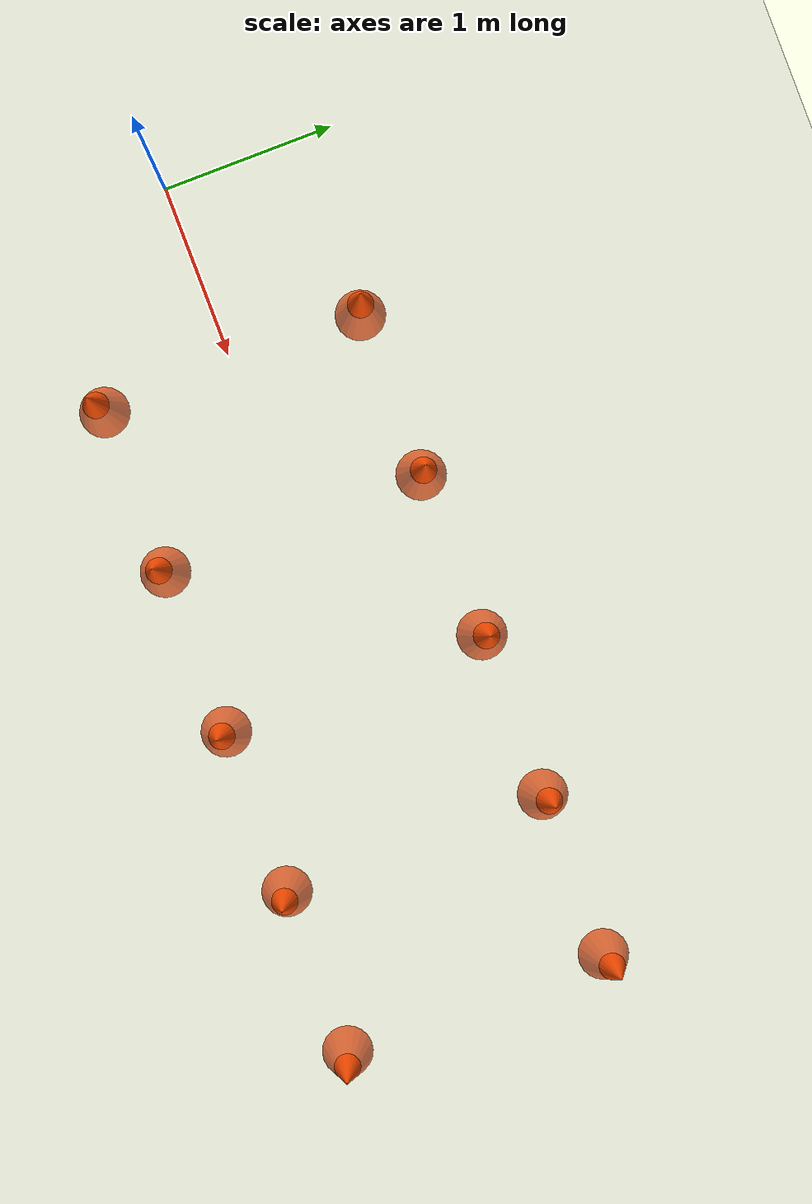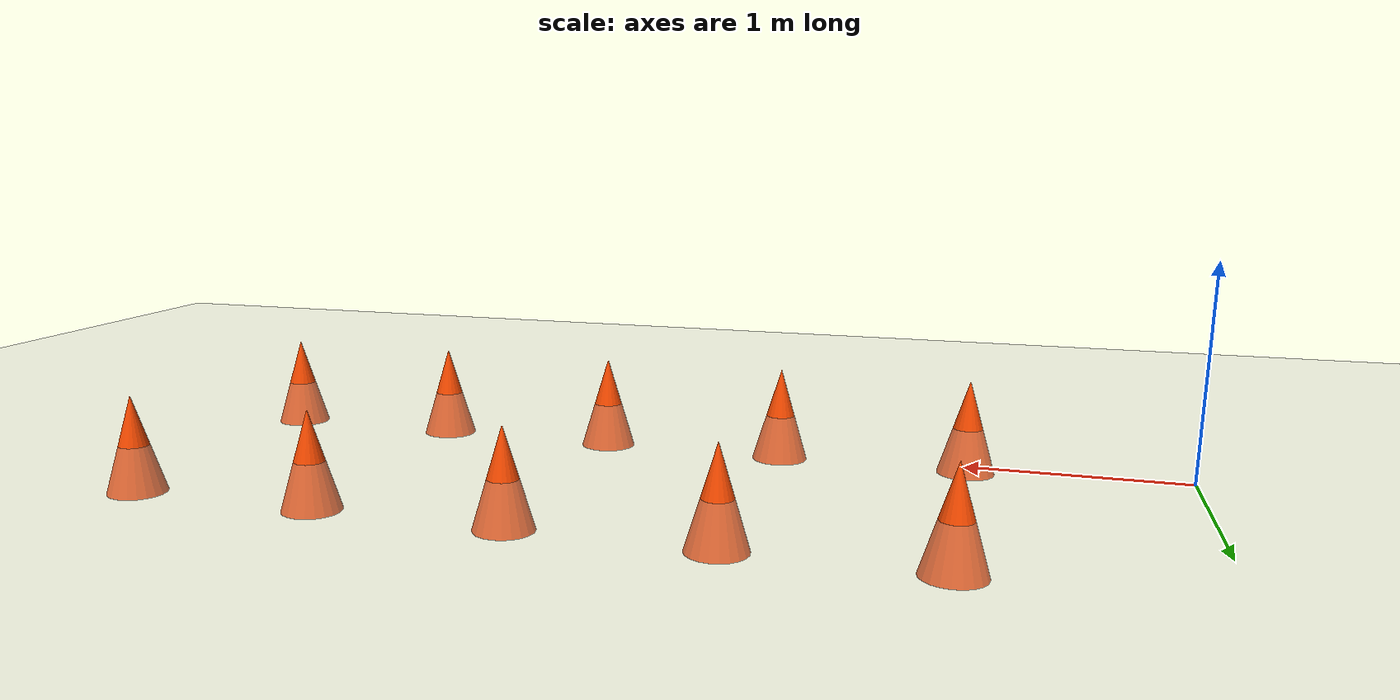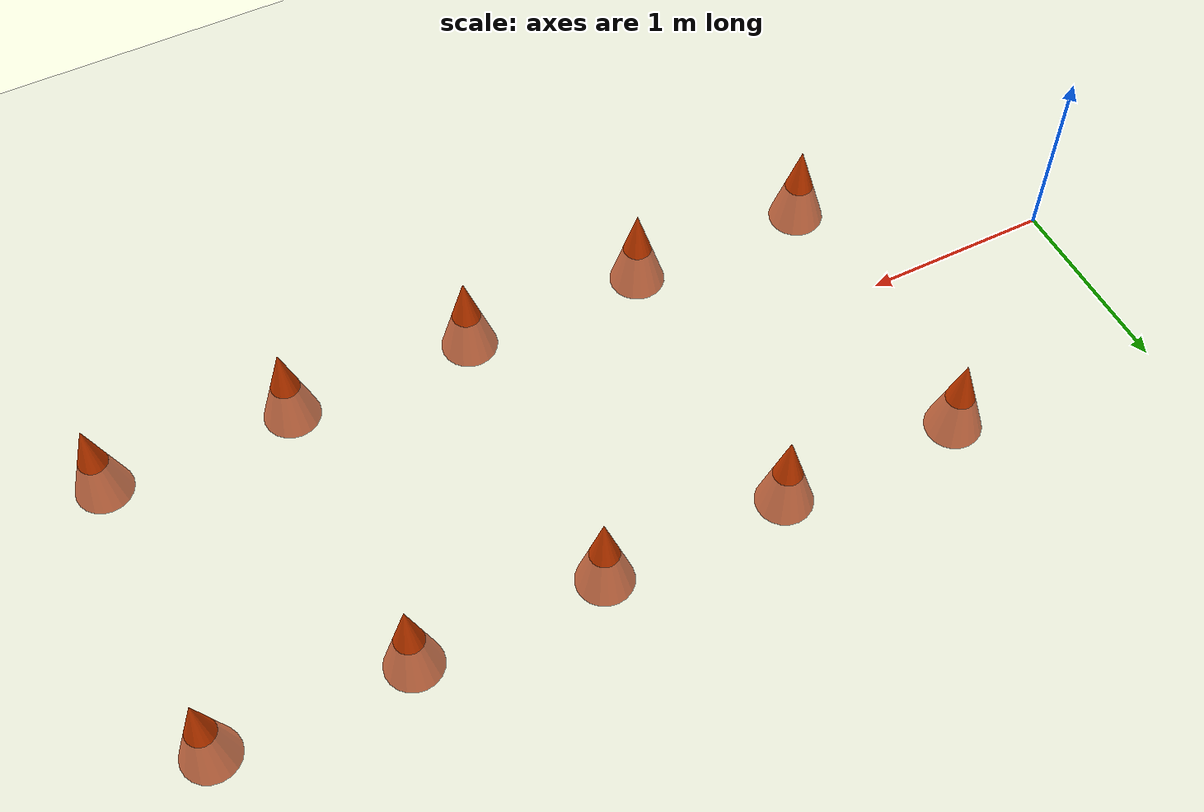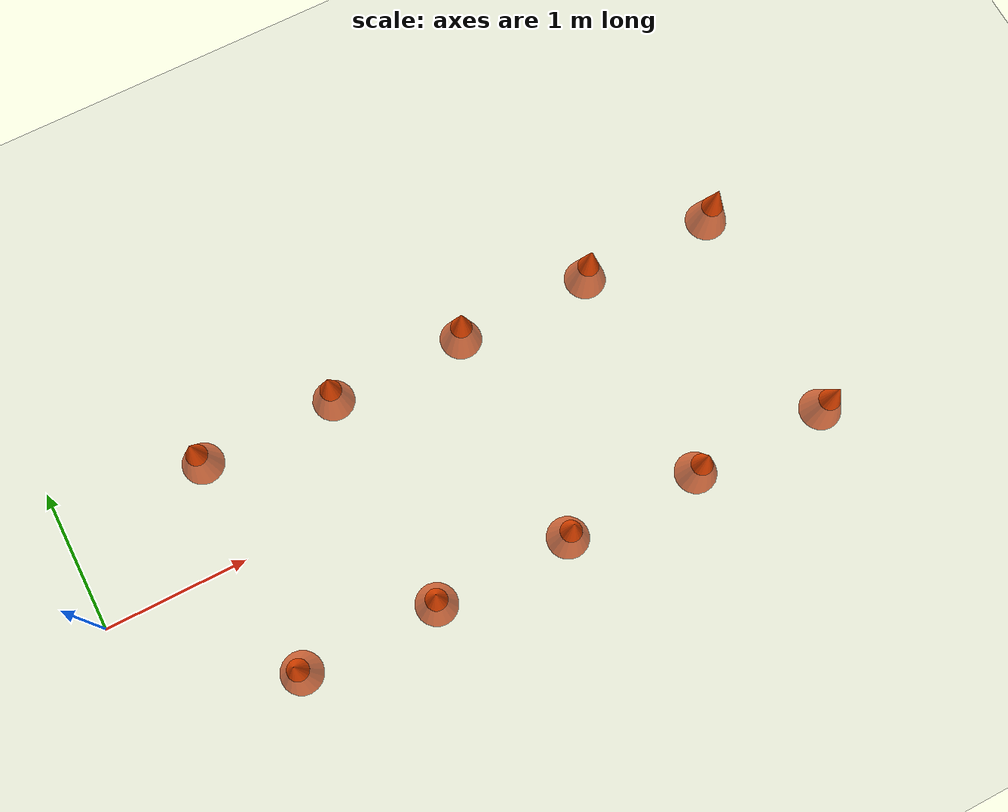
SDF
<?xml version="1.0"?>
<sdf version="1.10">
  <world name="course">

    <plugin filename="gz-sim-physics-system"
            name="gz::sim::systems::Physics"/>
    <plugin filename="gz-sim-sensors-system"
            name="gz::sim::systems::Sensors">
      <render_engine>ogre2</render_engine>
    </plugin>
    <plugin filename="gz-sim-scene-broadcaster-system"
            name="gz::sim::systems::SceneBroadcaster"/>
    <plugin filename="gz-sim-user-commands-system"
            name="gz::sim::systems::UserCommands"/>

    <light name="sun" type="directional">
      <cast_shadows>true</cast_shadows>
      <pose>0 0 10 0 0 0</pose>
      <diffuse>1 1 1 1</diffuse>
      <specular>0.5 0.5 0.5 1</specular>
      <direction>-0.5 0.1 -0.9</direction>
    </light>

    <model name="ground_plane">
      <static>true</static>
      <link name="link">
        <collision name="collision">
          <geometry><plane><normal>0 0 1</normal></plane></geometry>
        </collision>
        <visual name="visual">
          <geometry><plane><normal>0 0 1</normal><size>100 100</size></plane></geometry>
          <material>
            <ambient>0.8 0.8 0.8 1</ambient>
            <diffuse>0.8 0.8 0.8 1</diffuse>
          </material>
        </visual>
      </link>
    </model>

    <!-- ── Left side cones ── -->
    <model name="cone_left_1">
      <static>true</static>
      <pose>1 0.8 0 0 0 0</pose>
      <link name="link">
        <visual name="visual">
          <geometry><cone><radius>0.15</radius><length>0.5</length></cone></geometry>
          <material><ambient>1 0.3 0 1</ambient><diffuse>1 0.3 0 1</diffuse></material>
        </visual>
        <collision name="collision">
          <geometry><cone><radius>0.15</radius><length>0.5</length></cone></geometry>
        </collision>
      </link>
    </model>

    <model name="cone_left_2">
      <static>true</static>
      <pose>2 0.8 0 0 0 0</pose>
      <link name="link">
        <visual name="visual">
          <geometry><cone><radius>0.15</radius><length>0.5</length></cone></geometry>
          <material><ambient>1 0.3 0 1</ambient><diffuse>1 0.3 0 1</diffuse></material>
        </visual>
        <collision name="collision">
          <geometry><cone><radius>0.15</radius><length>0.5</length></cone></geometry>
        </collision>
      </link>
    </model>

    <model name="cone_left_3">
      <static>true</static>
      <pose>3 0.8 0 0 0 0</pose>
      <link name="link">
        <visual name="visual">
          <geometry><cone><radius>0.15</radius><length>0.5</length></cone></geometry>
          <material><ambient>1 0.3 0 1</ambient><diffuse>1 0.3 0 1</diffuse></material>
        </visual>
        <collision name="collision">
          <geometry><cone><radius>0.15</radius><length>0.5</length></cone></geometry>
        </collision>
      </link>
    </model>

    <model name="cone_left_4">
      <static>true</static>
      <pose>4 0.8 0 0 0 0</pose>
      <link name="link">
        <visual name="visual">
          <geometry><cone><radius>0.15</radius><length>0.5</length></cone></geometry>
          <material><ambient>1 0.3 0 1</ambient><diffuse>1 0.3 0 1</diffuse></material>
        </visual>
        <collision name="collision">
          <geometry><cone><radius>0.15</radius><length>0.5</length></cone></geometry>
        </collision>
      </link>
    </model>

    <model name="cone_left_5">
      <static>true</static>
      <pose>5 0.8 0 0 0 0</pose>
      <link name="link">
        <visual name="visual">
          <geometry><cone><radius>0.15</radius><length>0.5</length></cone></geometry>
          <material><ambient>1 0.3 0 1</ambient><diffuse>1 0.3 0 1</diffuse></material>
        </visual>
        <collision name="collision">
          <geometry><cone><radius>0.15</radius><length>0.5</length></cone></geometry>
        </collision>
      </link>
    </model>

    <!-- ── Right side cones ── -->
    <model name="cone_right_1">
      <static>true</static>
      <pose>1 -0.8 0 0 0 0</pose>
      <link name="link">
        <visual name="visual">
          <geometry><cone><radius>0.15</radius><length>0.5</length></cone></geometry>
          <material><ambient>1 0.3 0 1</ambient><diffuse>1 0.3 0 1</diffuse></material>
        </visual>
        <collision name="collision">
          <geometry><cone><radius>0.15</radius><length>0.5</length></cone></geometry>
        </collision>
      </link>
    </model>

    <model name="cone_right_2">
      <static>true</static>
      <pose>2 -0.8 0 0 0 0</pose>
      <link name="link">
        <visual name="visual">
          <geometry><cone><radius>0.15</radius><length>0.5</length></cone></geometry>
          <material><ambient>1 0.3 0 1</ambient><diffuse>1 0.3 0 1</diffuse></material>
        </visual>
        <collision name="collision">
          <geometry><cone><radius>0.15</radius><length>0.5</length></cone></geometry>
        </collision>
      </link>
    </model>

    <model name="cone_right_3">
      <static>true</static>
      <pose>3 -0.8 0 0 0 0</pose>
      <link name="link">
        <visual name="visual">
          <geometry><cone><radius>0.15</radius><length>0.5</length></cone></geometry>
          <material><ambient>1 0.3 0 1</ambient><diffuse>1 0.3 0 1</diffuse></material>
        </visual>
        <collision name="collision">
          <geometry><cone><radius>0.15</radius><length>0.5</length></cone></geometry>
        </collision>
      </link>
    </model>

    <model name="cone_right_4">
      <static>true</static>
      <pose>4 -0.8 0 0 0 0</pose>
      <link name="link">
        <visual name="visual">
          <geometry><cone><radius>0.15</radius><length>0.5</length></cone></geometry>
          <material><ambient>1 0.3 0 1</ambient><diffuse>1 0.3 0 1</diffuse></material>
        </visual>
        <collision name="collision">
          <geometry><cone><radius>0.15</radius><length>0.5</length></cone></geometry>
        </collision>
      </link>
    </model>

    <model name="cone_right_5">
      <static>true</static>
      <pose>5 -0.8 0 0 0 0</pose>
      <link name="link">
        <visual name="visual">
          <geometry><cone><radius>0.15</radius><length>0.5</length></cone></geometry>
          <material><ambient>1 0.3 0 1</ambient><diffuse>1 0.3 0 1</diffuse></material>
        </visual>
        <collision name="collision">
          <geometry><cone><radius>0.15</radius><length>0.5</length></cone></geometry>
        </collision>
      </link>
    </model>

    <gui fullscreen="0">
      <camera name="user_camera">
        <pose>0 -2 3 0 0.8 1.57</pose>
      </camera>
    </gui>

  </world>
</sdf>
